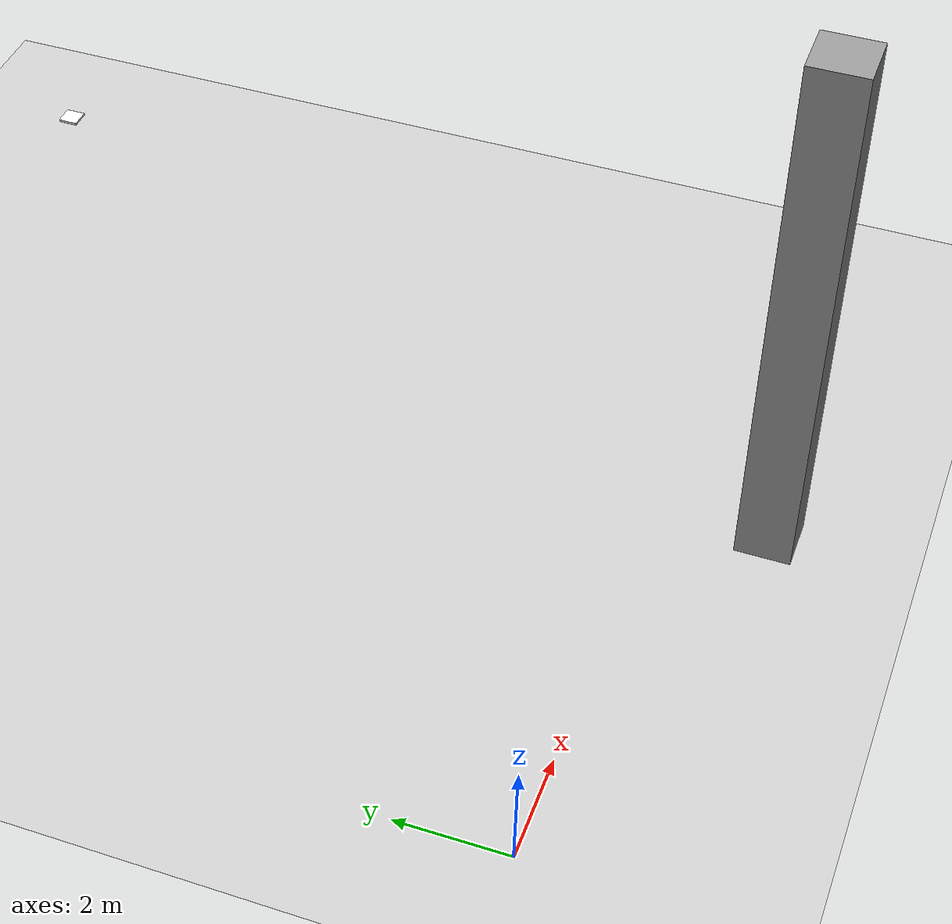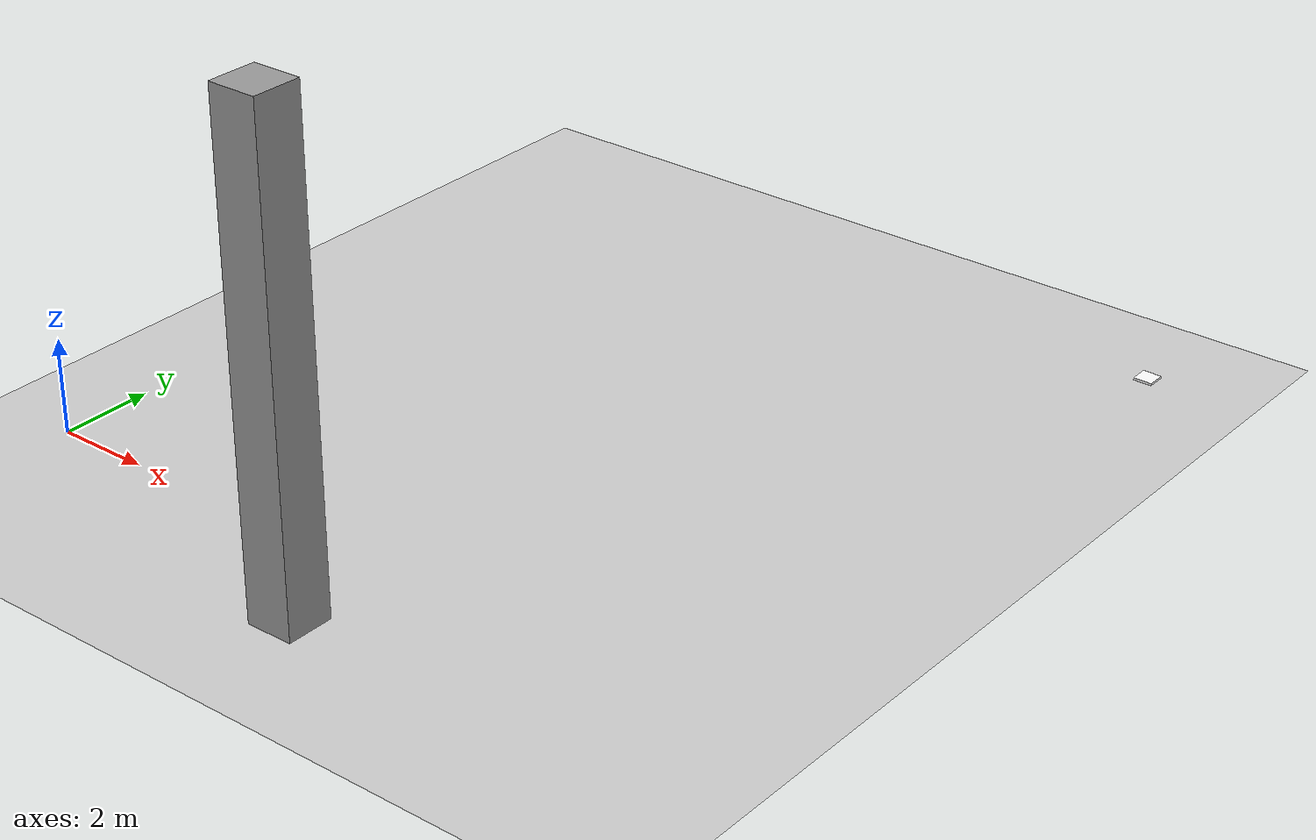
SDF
<?xml version="1.0" ?>
<sdf version="1.5">
  <world name="default">
    <!-- A global light source -->
    <include>
      <uri>model://sun</uri>
    </include>
    <!-- A ground plane -->
    <include>
      <uri>model://ground_plane</uri>
    </include>
    <include>
      <uri>model://nested_tags_visual_marker</uri>
      <pose>15.0 15.0 0.0 0.0 0.0 0.0</pose>
    </include>
    <include>
      <uri>model://duy</uri>
      <pose>8.0 -2.0 0.0 0.0 0.0 0.0</pose>
    </include>
    <physics name='default_physics' default='0' type='ode'>
      <gravity>0 0 -9.8066</gravity>
      <ode>
        <solver>
          <type>quick</type>
          <iters>10</iters>
          <sor>1.3</sor>
          <use_dynamic_moi_rescaling>0</use_dynamic_moi_rescaling>
        </solver>
        <constraints>
          <cfm>0</cfm>
          <erp>0.2</erp>
          <contact_max_correcting_vel>100</contact_max_correcting_vel>
          <contact_surface_layer>0.001</contact_surface_layer>
        </constraints>
      </ode>
      <max_step_size>0.004</max_step_size>
      <real_time_factor>1</real_time_factor>
      <real_time_update_rate>250</real_time_update_rate>
      <magnetic_field>6.0e-6 2.3e-5 -4.2e-5</magnetic_field>
    </physics>
	</world>
</sdf>

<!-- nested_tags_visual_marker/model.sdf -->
<sdf version='1.6'>
  <model name='nested_tags_visual_marker'>
    <link name='marker'>
      <pose>0 0 0 0 -0 0</pose>
      <self_collide>0</self_collide>
      <enable_wind>0</enable_wind>
      <kinematic>0</kinematic>
      <gravity>1</gravity>
      <inertial>
        <mass>1</mass>
        <pose>0 0 0 0 -0 0</pose>
        <inertia>
          <ixx>1</ixx>
          <ixy>0</ixy>
          <ixz>0</ixz>
          <iyy>1</iyy>
          <iyz>0</iyz>
          <izz>1</izz>
        </inertia>
      </inertial>
      <visual name='visual'>
        <geometry>
          <box>
            <size>0.4 0.4 0.05</size>
          </box>
        </geometry>
        <material>
          <script>
            <uri>model://nested_tags_visual_marker/materials/scripts</uri>
            <uri>model://nested_tags_visual_marker/materials/textures</uri>
            <name>ApriltagVisualMarker8/Marker</name>
          </script>
          <ambient>1 1 1 1</ambient>
          <diffuse>1 1 1 1</diffuse>
          <specular>0 0 0 1</specular>
          <emissive>1 1 1 0</emissive>
          <shader type='vertex'>
            <normal_map>__default__</normal_map>
          </shader>
        </material>
        <pose>0 0 0 0 -0 0</pose>
        <cast_shadows>1</cast_shadows>
        <transparency>0</transparency>
      </visual>
      <collision name='collision'>
        <laser_retro>0</laser_retro>
        <max_contacts>10</max_contacts>
        <pose>0 0 0 0 -0 0</pose>
        <geometry>
          <box>
            <size>0.4 0.4 0.05</size>
          </box>
        </geometry>
        <surface>
          <friction>
            <ode>
              <mu>1</mu>
              <mu2>1</mu2>
              <fdir1>0 0 0</fdir1>
              <slip1>0</slip1>
              <slip2>0</slip2>
            </ode>
            <torsional>
              <coefficient>1</coefficient>
              <patch_radius>0</patch_radius>
              <surface_radius>0</surface_radius>
              <use_patch_radius>1</use_patch_radius>
              <ode>
                <slip>0</slip>
              </ode>
            </torsional>
          </friction>
          <bounce>
            <restitution_coefficient>0</restitution_coefficient>
            <threshold>1e+06</threshold>
          </bounce>
          <contact>
            <collide_without_contact>0</collide_without_contact>
            <collide_without_contact_bitmask>1</collide_without_contact_bitmask>
            <collide_bitmask>1</collide_bitmask>
            <ode>
              <soft_cfm>0</soft_cfm>
              <soft_erp>0.2</soft_erp>
              <kp>1e+13</kp>
              <kd>1</kd>
              <max_vel>0.01</max_vel>
              <min_depth>0</min_depth>
            </ode>
            <bullet>
              <split_impulse>1</split_impulse>
              <split_impulse_penetration_threshold>-0.01</split_impulse_penetration_threshold>
              <soft_cfm>0</soft_cfm>
              <soft_erp>0.2</soft_erp>
              <kp>1e+13</kp>
              <kd>1</kd>
            </bullet>
          </contact>
        </surface>
      </collision>
    </link>
    <link name='marker_pad'>
      <pose>0 0 -1e-05 0 -0 0</pose>
      <self_collide>0</self_collide>
      <enable_wind>0</enable_wind>
      <kinematic>0</kinematic>
      <visual name='visual'>
        <geometry>
          <box>
            <size>0.1778 0.1778 1e-05</size>
          </box>
        </geometry>
        <material>
          <lighting>1</lighting>
          <script>
            <uri>file://media/materials/scripts/gazebo.material</uri>
            <name>Gazebo/White</name>
          </script>
          <ambient>0.3 0.3 0.3 1</ambient>
          <diffuse>0.7 0.7 0.7 1</diffuse>
          <specular>0.01 0.01 0.01 1</specular>
          <emissive>1 1 1 0</emissive>
          <shader type='vertex'>
            <normal_map>__default__</normal_map>
          </shader>
        </material>
        <cast_shadows>1</cast_shadows>
        <transparency>0</transparency>
        <pose>0 0 0 0 -0 0</pose>
      </visual>
    </link>
    <joint name='marker_JOINT_marker_pad' type='revolute'>
      <parent>marker</parent>
      <child>marker_pad</child>
      <pose>0 0 0 0 -0 0</pose>
      <axis>
        <xyz>0 0 1</xyz>
        <limit>
          <lower>0</lower>
          <upper>0</upper>
          <effort>-1</effort>
          <velocity>-1</velocity>
        </limit>
        <dynamics>
          <spring_reference>0</spring_reference>
          <spring_stiffness>0</spring_stiffness>
          <damping>0</damping>
          <friction>0</friction>
        </dynamics>
      </axis>
      <physics>
        <ode>
          <limit>
            <cfm>0</cfm>
            <erp>0.2</erp>
          </limit>
          <suspension>
            <cfm>0</cfm>
            <erp>0.2</erp>
          </suspension>
        </ode>
      </physics>
    </joint>
    <static>1</static>
    <allow_auto_disable>1</allow_auto_disable>
  </model>
</sdf>

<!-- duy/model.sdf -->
<sdf version='1.6'>
  <model name='duy'>
    <link name='link'>
      <inertial>
        <mass>346716</mass>
        <inertia>
          <ixx>9.35344e+06</ixx>
          <ixy>0</ixy>
          <ixz>0</ixz>
          <iyy>9.35344e+06</iyy>
          <iyz>0</iyz>
          <izz>57786.1</izz>
        </inertia>
        <pose frame=''>0 0 0 0 -0 0</pose>
      </inertial>
      <self_collide>0</self_collide>
      <enable_wind>0</enable_wind>
      <kinematic>0</kinematic>
      <pose frame=''>0 0 5.0 0 -0 0</pose>
      <gravity>1</gravity>
      <visual name='visual'>
        <geometry>
          <box>
            <size>1.0 1.0 10.0</size>
          </box>
        </geometry>
        <material>
          <script>
            <name>Gazebo/Grey</name>
            <uri>file://media/materials/scripts/gazebo.material</uri>
          </script>
          <shader type='vertex'>
            <normal_map>__default__</normal_map>
          </shader>
        </material>
        <pose frame=''>0 0 0 0 -0 0</pose>
        <transparency>0</transparency>
        <cast_shadows>1</cast_shadows>
      </visual>
      <collision name='collision'>
        <laser_retro>0</laser_retro>
        <max_contacts>10</max_contacts>
        <pose frame=''>0 0 0 0 -0 0</pose>
        <geometry>
          <box>
            <size>1.0 1.0 10.0</size>
          </box>
        </geometry>
        <surface>
          <friction>
            <ode>
              <mu>1</mu>
              <mu2>1</mu2>
              <fdir1>0 0 0</fdir1>
              <slip1>0</slip1>
              <slip2>0</slip2>
            </ode>
            <torsional>
              <coefficient>1</coefficient>
              <patch_radius>0</patch_radius>
              <surface_radius>0</surface_radius>
              <use_patch_radius>1</use_patch_radius>
              <ode>
                <slip>0</slip>
              </ode>
            </torsional>
          </friction>
          <bounce>
            <restitution_coefficient>0</restitution_coefficient>
            <threshold>1e+06</threshold>
          </bounce>
          <contact>
            <collide_without_contact>0</collide_without_contact>
            <collide_without_contact_bitmask>1</collide_without_contact_bitmask>
            <collide_bitmask>1</collide_bitmask>
            <ode>
              <soft_cfm>0</soft_cfm>
              <soft_erp>0.2</soft_erp>
              <kp>1e+13</kp>
              <kd>1</kd>
              <max_vel>0.01</max_vel>
              <min_depth>0</min_depth>
            </ode>
            <bullet>
              <split_impulse>1</split_impulse>
              <split_impulse_penetration_threshold>-0.01</split_impulse_penetration_threshold>
              <soft_cfm>0</soft_cfm>
              <soft_erp>0.2</soft_erp>
              <kp>1e+13</kp>
              <kd>1</kd>
            </bullet>
          </contact>
        </surface>
      </collision>
    </link>
    <static>0</static>
    <allow_auto_disable>1</allow_auto_disable>
  </model>
</sdf>
